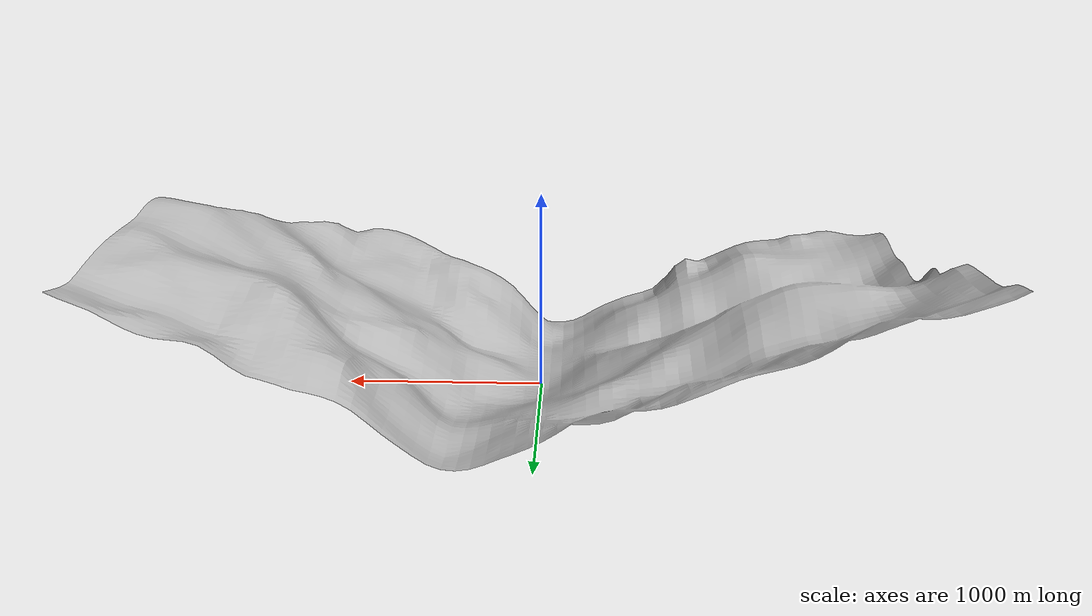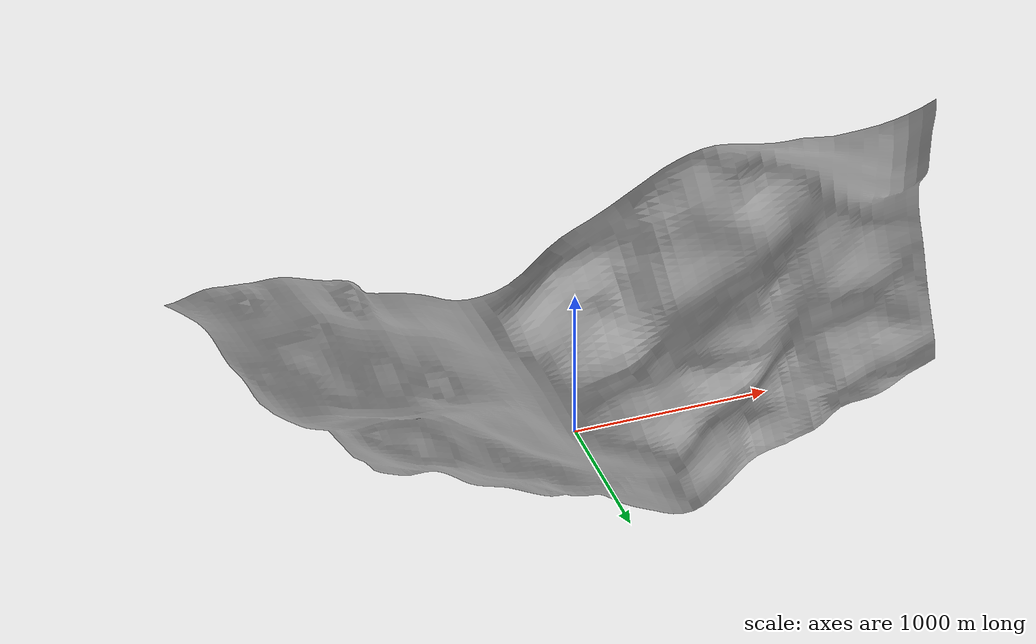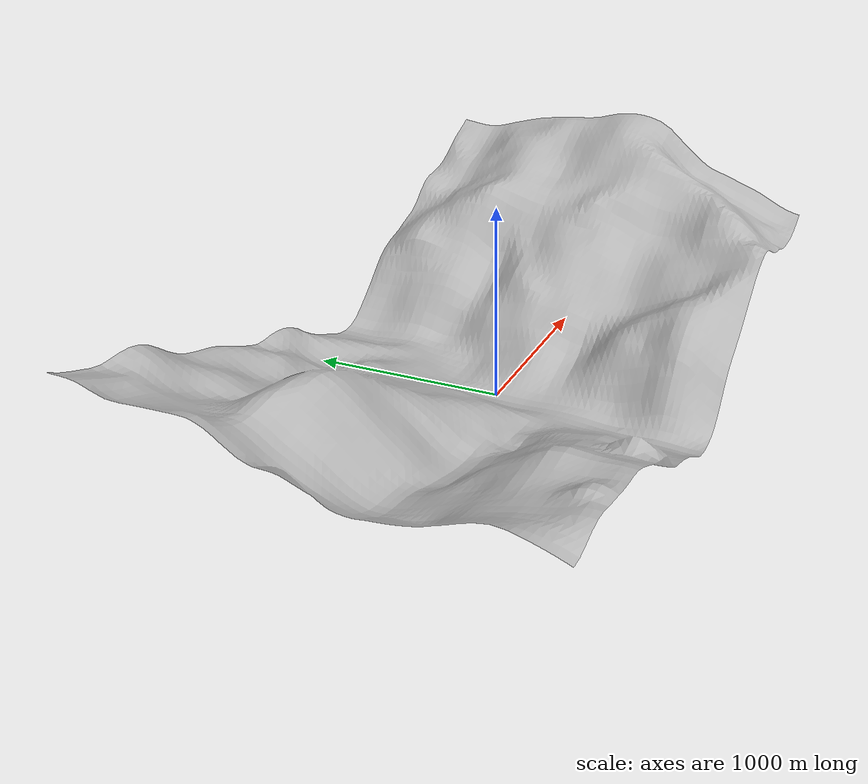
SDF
<?xml version="1.0" ?>
<sdf version="1.4">
  <model name="v4">
	<static>true</static>
	<link name="link">
	  <pose>0 0 117.1 0 0 0</pose>
	    <collision name="my_collision">
		<geometry>
                   <mesh><uri>model://v4/untitled.dae</uri></mesh>
		 </geometry>
	    </collision>

	    <visual name="my_visual">
		<geometry>
                   <mesh><uri>model://v4/untitled.dae</uri></mesh>
		 </geometry>
	    </visual>
	</link>
    </model>
</sdf>
